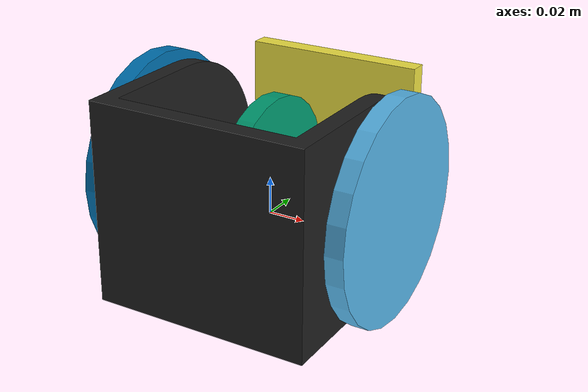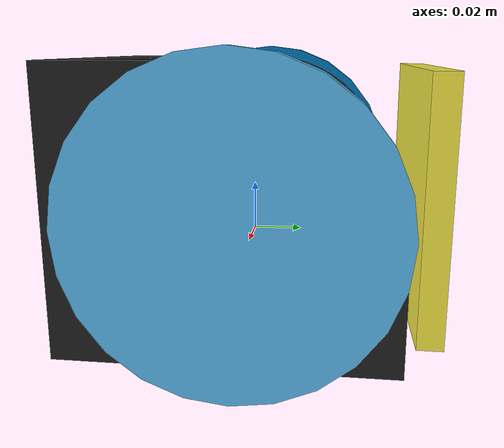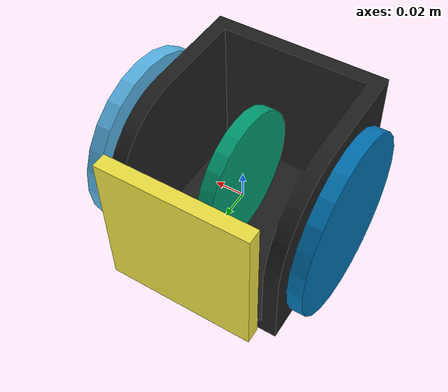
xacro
<?xml version="1.0" ?>
<robot name="ditto3"
         xmlns:xacro="http://www.ros.org/wiki/xacro">
  <joint name="face_mover_joint" type="revolute">
    <parent link="body"/>
    <child link="mover_link"/>
    <origin rpy="3.14159  1.56989  3.14159" xyz="0    0    0.02"/>
    <axis xyz="0.00000000e+00   0.00000000e+00  1.00000000e+00"/>
    <limit effort="-1.0" lower="-1.79769e+308" upper="1.79769e+308" velocity="-1.0"/>
  </joint>
  <joint name="left_wheel_joint" type="revolute">
    <parent link="body"/>
    <child link="left_wheel"/>
    <origin rpy="1.5707  0      1.5707" xyz="0.07     0       0.01833"/>
    <axis xyz="0.00000000e+00   0.00000000e+00   1.00000000e+00"/>
    <limit effort="-1.0" lower="-1.79769e+308" upper="1.79769e+308" velocity="-1.0"/>
  </joint>
  <joint name="fixed_joint" type="revolute">
    <parent link="mover_link"/>
    <child link="front_face"/>
    <origin rpy="3.11515 -1.56988 -3.11517" xyz="0    0.07  0"/>
    <axis xyz="0  0  1"/>
    <limit effort="-1" lower="0" upper="0" velocity="-1"/>
  </joint>
  <joint name="right_wheel_joint" type="revolute">
    <parent link="body"/>
    <child link="right_wheel"/>
    <origin rpy="1.5707  0      1.5707" xyz="-0.07     0       0.01833"/>
    <axis xyz="0.00000000e+00   0.00000000e+00   1.00000000e+00"/>
    <limit effort="-1.0" lower="-1.79769e+308" upper="1.79769e+308" velocity="-1.0"/>
  </joint>
  <link name="body">
    <inertial>
      <mass value="5"/>
      <origin rpy="0  0  0" xyz="0  0  0"/>
      <inertia ixx="0.166667" ixy="0" ixz="0" iyy="0.166667" iyz="0" izz="0.166667"/>
    </inertial>

    <visual name="visual">
      <origin rpy="0  0  0" xyz="0       0      -0.03666"/>
      <geometry><mesh filename="package://gp_abstract_sim/meshes/bodyCorrected.stl" scale="0.01 0.01 0.01"/></geometry>
     <material name= "Black"/>
    </visual>
 <collision name="collision">
      <origin rpy="0  0  0" xyz="0       0      -0.03666"/>
      <geometry>
        <mesh filename="package://gp_abstract_sim/meshes/bodyCorrected.stl" scale="0.01 0.01 0.01"/>
      </geometry>
    </collision>

  </link>
  <link name="left_wheel">
    <inertial>
      <mass value="0.5"/>
      <origin rpy="0  0  0" xyz="0  0  0"/>
      <inertia ixx="0.145833" ixy="0" ixz="0" iyy="0.145833" iyz="0" izz="0.125"/>
    </inertial>
    <collision name="collision">
      <origin rpy="0  0  0" xyz="0  0  0"/>
      <geometry>
        <cylinder length="0.01" radius="0.06"/>
      </geometry>
    </collision>
    <visual name="visual">
      <origin rpy="0  0  0" xyz="0  0  0"/>
      <geometry>
        <cylinder length="0.01" radius="0.06"/>
      </geometry>
    </visual>
  </link>
  <link name="mover_link">
    <inertial>
      <mass value="0.5"/>
      <origin rpy="0  0  0" xyz="0  0  0"/>
      <inertia ixx="0.145833" ixy="0" ixz="0" iyy="0.145833" iyz="0" izz="0.125"/>
    </inertial>
    <collision name="collision">
      <origin rpy="0  0  0" xyz="0  0  0"/>
      <geometry>
        <cylinder length="0.01" radius="0.045"/>
      </geometry>
    </collision>
    <visual name="visual">
      <origin rpy="0  0  0" xyz="0  0  0"/>
      <geometry>
        <cylinder length="0.01" radius="0.045"/>
      </geometry>
    </visual>
  </link>
  <link name="front_face">
    <inertial>
      <mass value="0.5"/>
      <origin rpy="0  0  0" xyz="0  0  0"/>
      <inertia ixx="0.166667" ixy="0" ixz="0" iyy="0.166667" iyz="0" izz="0.166667"/>
    </inertial>
    <collision name="box_collision">
      <origin rpy="0  0  0" xyz="0  0  0"/>
      <geometry>
        <box size="0.1 0.01 0.1"/>
      </geometry>
    </collision>
    <visual name="visual">
      <origin rpy="0  0  0" xyz="0  0  0"/>
      <geometry>
        <box size="0.1 0.01 0.1"/>
      </geometry>
    </visual>
  </link>
  <link name="right_wheel">
    <inertial>
      <mass value="0.5"/>
      <origin rpy="0  0  0" xyz="0  0  0"/>
      <inertia ixx="0.145833" ixy="0" ixz="0" iyy="0.145833" iyz="0" izz="0.125"/>
    </inertial>
    <collision name="collision">
      <origin rpy="0  0  0" xyz="0  0  0"/>
      <geometry>
        <cylinder length="0.01" radius="0.06"/>
      </geometry>
    </collision>
    <visual name="visual">
      <origin rpy="0  0  0" xyz="0  0  0"/>
      <geometry>
        <cylinder length="0.01" radius="0.06"/>
      </geometry>
    </visual>
  </link>
  <gazebo>
    <plugin name="my_speed_controller_plugin" filename="libmy_speed_controller_plugin.so">
      <namespace_model>GPabstractV2</namespace_model>
      <activate_pid_control>no</activate_pid_control>
      <wheel_kp>0.1</wheel_kp>
      <wheel_ki>0.0</wheel_ki>
      <wheel_kd>0.0</wheel_kd>
	  </plugin>
  </gazebo>
  <gazebo reference="front_face">
   <sensor name='my_contact' type='contact'>
       <plugin name="my_plugin" filename="libcontact.so"/>
          <contact>
            <collision>box_collision_collision</collision>
          </contact>
        <update_rate> 5 </update_rate>
        </sensor>
  </gazebo>
</robot>
